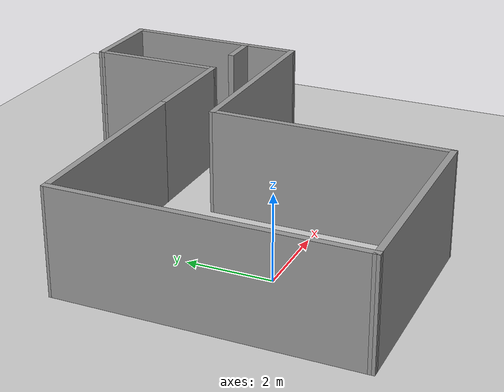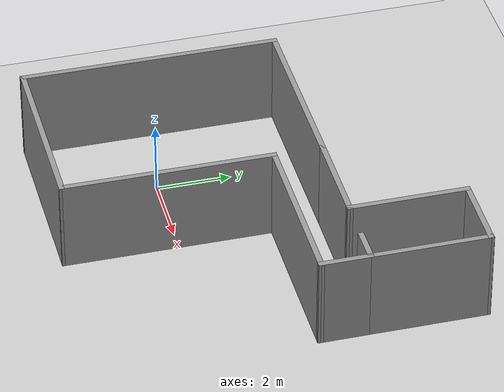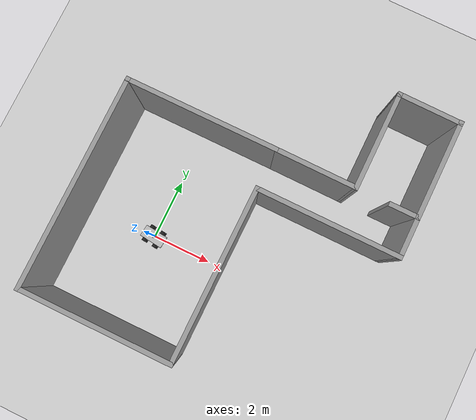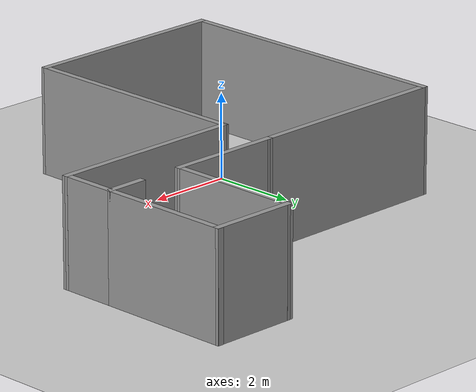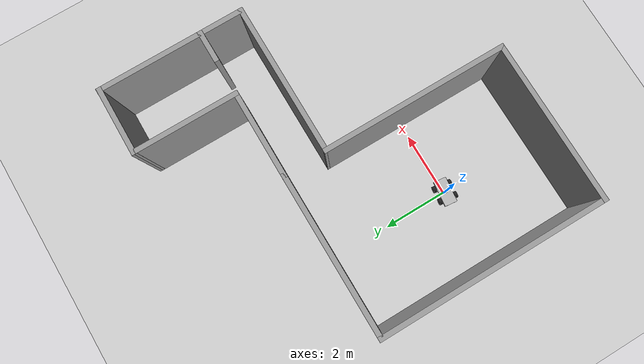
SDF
<sdf version="1.7">
 <world name="default">
  <light name="sun" type="directional">
   <pose>0 0 10 0 -0 0</pose>
   <diffuse>0.8 0.8 0.8 1</diffuse>
   <specular>0.2 0.2 0.2 1</specular>
   <attenuation>
    <range>1000</range>
    <constant>0.9</constant>
    <linear>0.01</linear>
    <quadratic>0.001</quadratic>
   </attenuation>
   <direction>-0.5 0.1 -0.9</direction>
   <spot><inner_angle>0</inner_angle><outer_angle>0</outer_angle><falloff>0</falloff></spot>
  </light>
  <model name="ground_plane">
   <static>1</static>
   <link name="link">
    <collision name="collision">
     <geometry><plane><normal>0 0 1</normal><size>100 100</size></plane></geometry>
     <surface><friction><ode><mu>100</mu><mu2>50</mu2></ode></friction></surface>
    </collision>
    <visual name="visual">
     <cast_shadows>0</cast_shadows>
     <geometry><plane><normal>0 0 1</normal><size>100 100</size></plane></geometry>
     <material>
      <script><uri>file://media/materials/scripts/gazebo.material</uri><name>Gazebo/Grey</name></script>
     </material>
    </visual>
   </link>
  </model>
  <gravity>0 0 -9.8</gravity>
  <magnetic_field>6e-06 2.3e-05 -4.2e-05</magnetic_field>
  <atmosphere type="adiabatic"/>
  <physics type="ode">
   <max_step_size>0.001</max_step_size>
   <real_time_factor>1</real_time_factor>
   <real_time_update_rate>1000</real_time_update_rate>
  </physics>
  <scene><ambient>0.4 0.4 0.4 1</ambient><background>0.7 0.7 0.7 1</background><shadows>1</shadows></scene>
  <audio><device>default</device></audio>
  <spherical_coordinates>
   <surface_model>EARTH_WGS84</surface_model>
   <latitude_deg>0</latitude_deg>
   <longitude_deg>0</longitude_deg>
   <elevation>0</elevation>
   <heading_deg>0</heading_deg>
  </spherical_coordinates>
  <model name="my_bot">
   <link name="base_link">
    <inertial>
     <pose>0 0 0.106 0 -0 0</pose>
     <mass>0.625</mass>
     <inertia>
      <ixx>0.00786083</ixx>
      <ixy>0</ixy>
      <ixz>0</ixz>
      <iyy>0.0278608</iyy>
      <iyz>0</iyz>
      <izz>0.0343333</izz>
     </inertia>
    </inertial>
    <collision name="base_link_fixed_joint_lump__chassis_link_collision">
     <pose>0 0 0.1 0 -0 0</pose>
     <geometry><box><size>0.8 0.4 0.05</size></box></geometry>
    </collision>
    <collision name="base_link_fixed_joint_lump__laser_link_collision_1">
     <pose>0 0 0.13 0 -0 0</pose>
     <geometry><cylinder><length>0.055</length><radius>0.0508</radius></cylinder></geometry>
    </collision>
    <visual name="base_link_fixed_joint_lump__chassis_link_visual">
     <pose>0 0 0.1 0 -0 0</pose>
     <geometry><box><size>0.8 0.4 0.05</size></box></geometry>
    </visual>
    <visual name="base_link_fixed_joint_lump__laser_link_visual_1">
     <pose>0 0 0.13 0 -0 0</pose>
     <geometry><cylinder><length>0.055</length><radius>0.0508</radius></cylinder></geometry>
    </visual>
    <sensor name="lidar" type="ray">
     <always_on>1</always_on>
     <visualize>1</visualize>
     <update_rate>5</update_rate>
     <ray>
      <scan>
       <horizontal>
        <samples>360</samples>
        <resolution>1</resolution>
        <min_angle>0</min_angle>
        <max_angle>6.28</max_angle>
       </horizontal>
       <vertical><samples>1</samples><min_angle>0</min_angle><max_angle>0</max_angle></vertical>
      </scan>
      <range><min>0.12</min><max>3.5</max><resolution>0.015</resolution></range>
      <noise><type>gaussian</type><mean>0</mean><stddev>0.01</stddev></noise>
     </ray>
     <plugin name="scan" filename="libgazebo_ros_ray_sensor.so">
      <ros><argument>--ros-args --remap ~/out:=scan</argument></ros>
      <output_type>sensor_msgs/LaserScan</output_type>
      <frame_name>laser_link</frame_name>
     </plugin>
     <pose>0 0 0.13 0 -0 0</pose>
    </sensor>
   </link>
   <joint name="wheel1_joint" type="revolute">
    <pose relative_to="base_link">0.2 0.25 0 -1.5708 0 0</pose>
    <parent>base_link</parent>
    <child>wheel1_link</child>
    <axis>
     <xyz>0 0 1</xyz>
     <limit><effort>10000</effort><velocity>1000</velocity><lower>-1e+16</lower><upper>1e+16</upper></limit>
     <dynamics>
      <damping>1</damping>
      <friction>1</friction>
      <spring_reference>0</spring_reference>
      <spring_stiffness>0</spring_stiffness>
     </dynamics>
    </axis>
   </joint>
   <link name="wheel1_link">
    <pose relative_to="wheel1_joint">0 0 0 0 -0 0</pose>
    <inertial>
     <mass>0.1</mass>
     <inertia>
      <ixx>0.000333333</ixx>
      <ixy>0</ixy>
      <ixz>0</ixz>
      <iyy>0.000333333</iyy>
      <iyz>0</iyz>
      <izz>0.0005</izz>
     </inertia>
    </inertial>
    <collision name="wheel1_link_collision">
     <geometry><cylinder><length>0.1</length><radius>0.1</radius></cylinder></geometry>
    </collision>
    <visual name="wheel1_link_visual">
     <geometry><cylinder><length>0.1</length><radius>0.1</radius></cylinder></geometry>
     <material>
      <script><name>Gazebo/Black</name><uri>file://media/materials/scripts/gazebo.material</uri></script>
     </material>
    </visual>
   </link>
   <joint name="wheel2_joint" type="revolute">
    <pose relative_to="base_link">0.2 -0.25 0 1.5708 -0 0</pose>
    <parent>base_link</parent>
    <child>wheel2_link</child>
    <axis>
     <xyz>0 0 -1</xyz>
     <limit><effort>10000</effort><velocity>1000</velocity><lower>-1e+16</lower><upper>1e+16</upper></limit>
     <dynamics>
      <damping>1</damping>
      <friction>1</friction>
      <spring_reference>0</spring_reference>
      <spring_stiffness>0</spring_stiffness>
     </dynamics>
    </axis>
   </joint>
   <link name="wheel2_link">
    <pose relative_to="wheel2_joint">0 0 0 0 -0 0</pose>
    <inertial>
     <mass>0.1</mass>
     <inertia>
      <ixx>0.000333333</ixx>
      <ixy>0</ixy>
      <ixz>0</ixz>
      <iyy>0.000333333</iyy>
      <iyz>0</iyz>
      <izz>0.0005</izz>
     </inertia>
    </inertial>
    <collision name="wheel2_link_collision">
     <geometry><cylinder><length>0.1</length><radius>0.1</radius></cylinder></geometry>
    </collision>
    <visual name="wheel2_link_visual">
     <geometry><cylinder><length>0.1</length><radius>0.1</radius></cylinder></geometry>
     <material>
      <script><name>Gazebo/Black</name><uri>file://media/materials/scripts/gazebo.material</uri></script>
     </material>
    </visual>
   </link>
   <joint name="wheel3_joint" type="revolute">
    <pose relative_to="base_link">-0.2 0.25 0 -1.5708 0 0</pose>
    <parent>base_link</parent>
    <child>wheel3_link</child>
    <axis>
     <xyz>0 0 1</xyz>
     <limit><effort>10000</effort><velocity>1000</velocity><lower>-1e+16</lower><upper>1e+16</upper></limit>
     <dynamics>
      <damping>1</damping>
      <friction>1</friction>
      <spring_reference>0</spring_reference>
      <spring_stiffness>0</spring_stiffness>
     </dynamics>
    </axis>
   </joint>
   <link name="wheel3_link">
    <pose relative_to="wheel3_joint">0 0 0 0 -0 0</pose>
    <inertial>
     <mass>0.1</mass>
     <inertia>
      <ixx>0.000333333</ixx>
      <ixy>0</ixy>
      <ixz>0</ixz>
      <iyy>0.000333333</iyy>
      <iyz>0</iyz>
      <izz>0.0005</izz>
     </inertia>
    </inertial>
    <collision name="wheel3_link_collision">
     <geometry><cylinder><length>0.1</length><radius>0.1</radius></cylinder></geometry>
    </collision>
    <visual name="wheel3_link_visual">
     <geometry><cylinder><length>0.1</length><radius>0.1</radius></cylinder></geometry>
     <material>
      <script><name>Gazebo/Black</name><uri>file://media/materials/scripts/gazebo.material</uri></script>
     </material>
    </visual>
   </link>
   <joint name="wheel4_joint" type="revolute">
    <pose relative_to="base_link">-0.2 -0.25 0 1.5708 -0 0</pose>
    <parent>base_link</parent>
    <child>wheel4_link</child>
    <axis>
     <xyz>0 0 -1</xyz>
     <limit><effort>10000</effort><velocity>1000</velocity><lower>-1e+16</lower><upper>1e+16</upper></limit>
     <dynamics>
      <damping>1</damping>
      <friction>1</friction>
      <spring_reference>0</spring_reference>
      <spring_stiffness>0</spring_stiffness>
     </dynamics>
    </axis>
   </joint>
   <link name="wheel4_link">
    <pose relative_to="wheel4_joint">0 0 0 0 -0 0</pose>
    <inertial>
     <mass>0.1</mass>
     <inertia>
      <ixx>0.000333333</ixx>
      <ixy>0</ixy>
      <ixz>0</ixz>
      <iyy>0.000333333</iyy>
      <iyz>0</iyz>
      <izz>0.0005</izz>
     </inertia>
    </inertial>
    <collision name="wheel4_link_collision">
     <geometry><cylinder><length>0.1</length><radius>0.1</radius></cylinder></geometry>
    </collision>
    <visual name="wheel4_link_visual">
     <geometry><cylinder><length>0.1</length><radius>0.1</radius></cylinder></geometry>
     <material>
      <script><name>Gazebo/Black</name><uri>file://media/materials/scripts/gazebo.material</uri></script>
     </material>
    </visual>
   </link>
   <plugin name="front_wheel" filename="libgazebo_ros_diff_drive.so">
    <left_joint>wheel1_joint</left_joint>
    <right_joint>wheel2_joint</right_joint>
    <wheel_separation>0.064</wheel_separation>
    <wheel_diameter>0.098</wheel_diameter>
    <max_wheel_torque>200</max_wheel_torque>
    <max_wheel_acceleration>10.0</max_wheel_acceleration>
    <odometry_frame>odom</odometry_frame>
    <robot_base_frame>base_link</robot_base_frame>
    <publish_odom>1</publish_odom>
    <publish_odom_tf>1</publish_odom_tf>
    <publish_wheel_tf>1</publish_wheel_tf>
   </plugin>
   <static>0</static>
   <plugin name="rear_wheel" filename="libgazebo_ros_diff_drive.so">
    <left_joint>wheel3_joint</left_joint>
    <right_joint>wheel4_joint</right_joint>
    <wheel_separation>0.064</wheel_separation>
    <wheel_diameter>0.098</wheel_diameter>
    <max_wheel_torque>200</max_wheel_torque>
    <max_wheel_acceleration>10.0</max_wheel_acceleration>
    <odometry_frame>odom</odometry_frame>
    <robot_base_frame>base_link</robot_base_frame>
    <publish_odom>1</publish_odom>
    <publish_odom_tf>1</publish_odom_tf>
    <publish_wheel_tf>1</publish_wheel_tf>
   </plugin>
   <pose>-0.002691 -0.024 0.099993 -1.7e-05 1e-05 -0.11157</pose>
  </model>
  <model name="mapa_home_copa">
   <pose>2.32959 1.9531 0 0 -0 0</pose>
   <link name="Wall_11">
    <collision name="Wall_11_Collision">
     <geometry><box><size>5.01742 0.15 2.5</size></box></geometry>
     <pose>0 0 1.25 0 -0 0</pose>
    </collision>
    <visual name="Wall_11_Visual">
     <pose>0 0 1.25 0 -0 0</pose>
     <geometry><box><size>5.01742 0.15 2.5</size></box></geometry>
     <material>
      <script><uri>file://media/materials/scripts/gazebo.material</uri><name>Gazebo/Grey</name></script>
      <ambient>1 1 1 1</ambient>
     </material>
     <meta><layer>0</layer></meta>
    </visual>
    <pose>-2.27864 -4.96646 0 0 -0 -3.13802</pose>
   </link>
   <link name="Wall_12">
    <collision name="Wall_12_Collision">
     <geometry><box><size>7 0.15 2.5</size></box></geometry>
     <pose>0 0 1.25 0 -0 0</pose>
    </collision>
    <visual name="Wall_12_Visual">
     <pose>0 0 1.25 0 -0 0</pose>
     <geometry><box><size>7 0.15 2.5</size></box></geometry>
     <material>
      <script><uri>file://media/materials/scripts/gazebo.material</uri><name>Gazebo/Grey</name></script>
      <ambient>1 1 1 1</ambient>
     </material>
     <meta><layer>0</layer></meta>
    </visual>
    <pose>-4.71234 -1.55015 0 0 -0 1.5708</pose>
   </link>
   <link name="Wall_13">
    <collision name="Wall_13_Collision">
     <geometry><box><size>5.0087 0.15 2.5</size></box></geometry>
     <pose>0 0 1.25 0 -0 0</pose>
    </collision>
    <visual name="Wall_13_Visual">
     <pose>0 0 1.25 0 -0 0</pose>
     <geometry><box><size>5.0087 0.15 2.5</size></box></geometry>
     <material>
      <script><uri>file://media/materials/scripts/gazebo.material</uri><name>Gazebo/Grey</name></script>
      <ambient>1 1 1 1</ambient>
     </material>
     <meta><layer>0</layer></meta>
    </visual>
    <pose>-2.28299 1.87919 0 0 -0 0.00179</pose>
   </link>
   <link name="Wall_15">
    <collision name="Wall_15_Collision">
     <geometry><box><size>4.7 0.15 2.5</size></box></geometry>
     <pose>0 0 1.25 0 -0 0</pose>
    </collision>
    <visual name="Wall_15_Visual">
     <pose>0 0 1.25 0 -0 0</pose>
     <geometry><box><size>4.7 0.15 2.5</size></box></geometry>
     <material>
      <script><uri>file://media/materials/scripts/gazebo.material</uri><name>Gazebo/Grey</name></script>
      <ambient>1 1 1 1</ambient>
     </material>
     <meta><layer>0</layer></meta>
    </visual>
    <pose>2.43741 0.595569 0 0 -0 0</pose>
   </link>
   <link name="Wall_16">
    <collision name="Wall_16_Collision">
     <geometry><box><size>1.42065 0.15 2.5</size></box></geometry>
     <pose>0 0 1.25 0 -0 0</pose>
    </collision>
    <visual name="Wall_16_Visual">
     <pose>0 0 1.25 0 -0 0</pose>
     <geometry><box><size>1.42065 0.15 2.5</size></box></geometry>
     <material>
      <script><uri>file://media/materials/scripts/gazebo.material</uri><name>Gazebo/Grey</name></script>
      <ambient>1 1 1 1</ambient>
     </material>
     <meta><layer>0</layer></meta>
    </visual>
    <pose>4.71071 1.23089 0 0 -0 1.57346</pose>
   </link>
   <link name="Wall_18">
    <collision name="Wall_18_Collision">
     <geometry><box><size>5.70334 0.15 2.5</size></box></geometry>
     <pose>0 0 1.25 0 -0 0</pose>
    </collision>
    <visual name="Wall_18_Visual">
     <pose>0 0 1.25 0 -0 0</pose>
     <geometry><box><size>5.70334 0.15 2.5</size></box></geometry>
     <material>
      <script><uri>file://media/materials/scripts/gazebo.material</uri><name>Gazebo/Grey</name></script>
      <ambient>1 1 1 1</ambient>
     </material>
     <meta><layer>0</layer></meta>
    </visual>
    <pose>0.158729 -2.1811 0 0 -0 1.56947</pose>
   </link>
   <link name="Wall_21">
    <collision name="Wall_21_Collision">
     <geometry><box><size>1 0.15 2.5</size></box></geometry>
     <pose>0 0 1.25 0 -0 0</pose>
    </collision>
    <visual name="Wall_21_Visual">
     <pose>0 0 1.25 0 -0 0</pose>
     <geometry><box><size>1 0.15 2.5</size></box></geometry>
     <material>
      <script><uri>file://media/materials/scripts/gazebo.material</uri><name>Gazebo/Grey</name></script>
      <ambient>1 1 1 1</ambient>
     </material>
     <meta><layer>0</layer></meta>
    </visual>
    <pose>4.28402 1.86621 0 0 -0 3.14159</pose>
   </link>
   <link name="Wall_3">
    <collision name="Wall_3_Collision">
     <geometry><box><size>3.25 0.15 2.5</size></box></geometry>
     <pose>0 0 1.25 0 -0 0</pose>
    </collision>
    <visual name="Wall_3_Visual">
     <pose>0 0 1.25 0 -0 0</pose>
     <geometry><box><size>3.25 0.15 2.5</size></box></geometry>
     <material>
      <script><uri>file://media/materials/scripts/gazebo.material</uri><name>Gazebo/Grey</name></script>
      <ambient>1 1 1 1</ambient>
     </material>
     <meta><layer>0</layer></meta>
    </visual>
    <pose>2.73766 3.42484 0 0 -0 -1.5708</pose>
   </link>
   <link name="Wall_5">
    <collision name="Wall_5_Collision">
     <geometry><box><size>3.25 0.15 2.5</size></box></geometry>
     <pose>0 0 1.25 0 -0 0</pose>
    </collision>
    <visual name="Wall_5_Visual">
     <pose>0 0 1.25 0 -0 0</pose>
     <geometry><box><size>3.25 0.15 2.5</size></box></geometry>
     <material>
      <script><uri>file://media/materials/scripts/gazebo.material</uri><name>Gazebo/Grey</name></script>
      <ambient>1 1 1 1</ambient>
     </material>
     <meta><layer>0</layer></meta>
    </visual>
    <pose>4.70902 3.41621 0 0 -0 1.5708</pose>
   </link>
   <link name="Wall_6">
    <collision name="Wall_6_Collision">
     <geometry><box><size>2.12141 0.15 2.5</size></box></geometry>
     <pose>0 0 1.25 0 -0 0</pose>
    </collision>
    <visual name="Wall_6_Visual">
     <pose>0 0 1.25 0 -0 0</pose>
     <geometry><box><size>2.12141 0.15 2.5</size></box></geometry>
     <material>
      <script><uri>file://media/materials/scripts/gazebo.material</uri><name>Gazebo/Grey</name></script>
      <ambient>1 1 1 1</ambient>
     </material>
     <meta><layer>0</layer></meta>
    </visual>
    <pose>3.72334 4.96724 0 0 -0 3.13388</pose>
   </link>
   <link name="Wall_9">
    <collision name="Wall_9_Collision">
     <geometry><box><size>2.74132 0.15 2.5</size></box></geometry>
     <pose>0 0 1.25 0 -0 0</pose>
    </collision>
    <visual name="Wall_9_Visual">
     <pose>0 0 1.25 0 -0 0</pose>
     <geometry><box><size>2.74132 0.15 2.5</size></box></geometry>
     <material>
      <script><uri>file://media/materials/scripts/gazebo.material</uri><name>Gazebo/Grey</name></script>
      <ambient>1 1 1 1</ambient>
     </material>
     <meta><layer>0</layer></meta>
    </visual>
    <pose>1.44201 1.87919 0 0 -0 3.13824</pose>
   </link>
   <static>1</static>
  </model>
 </world>
</sdf>
